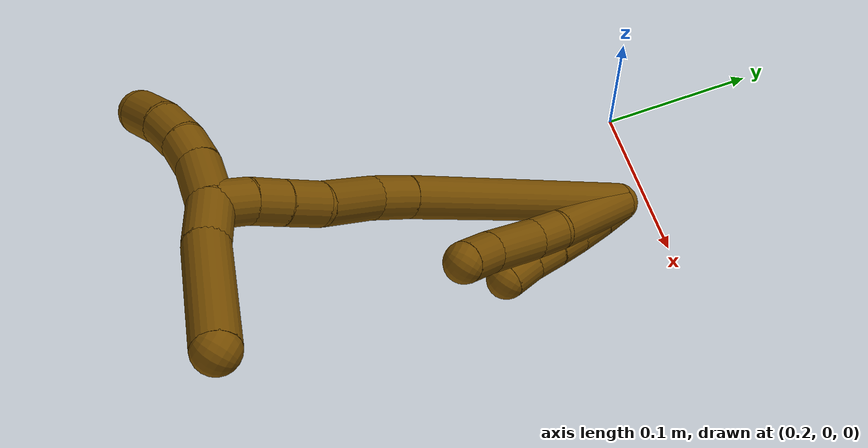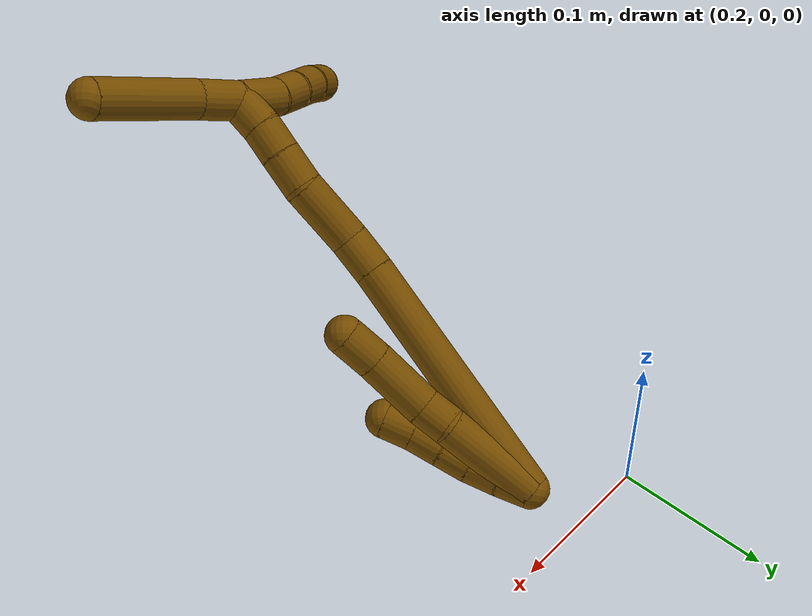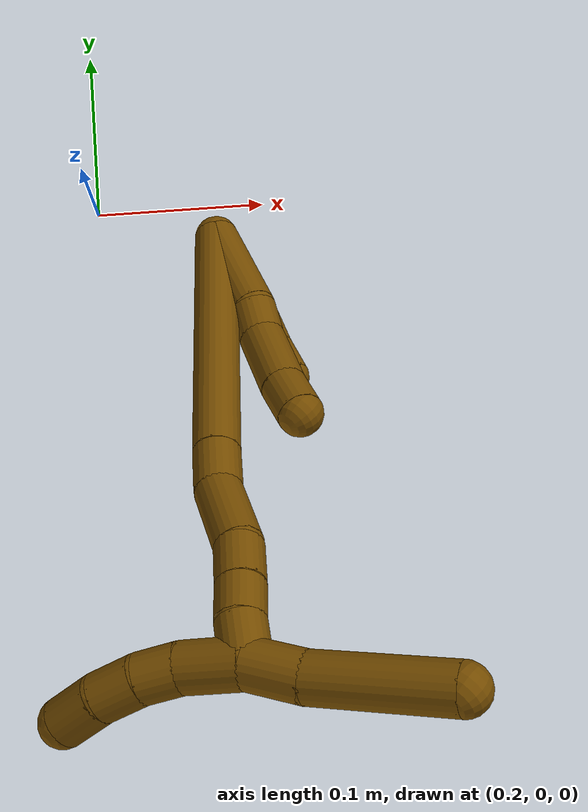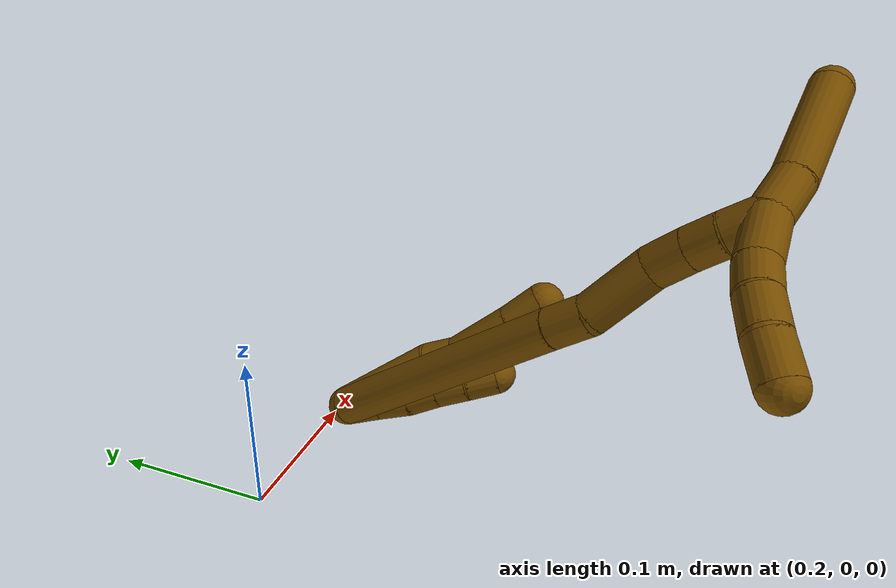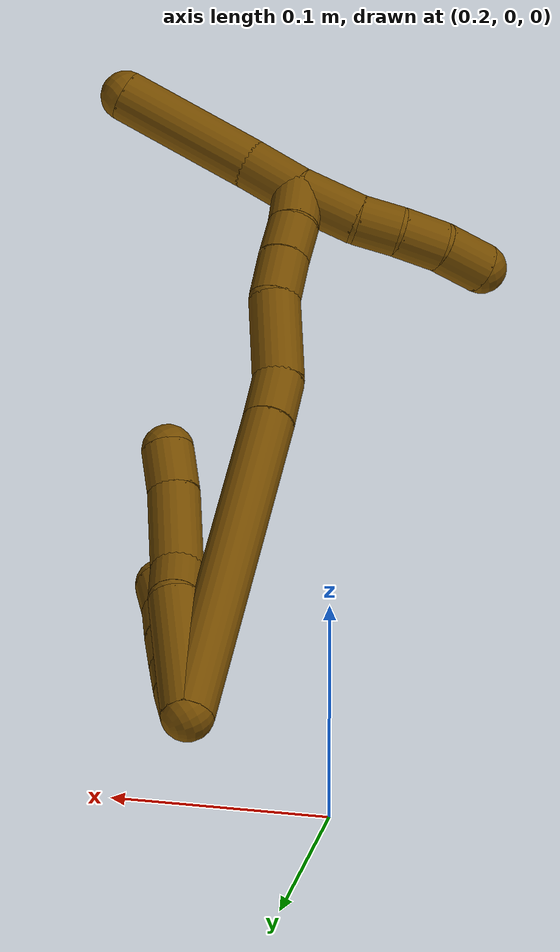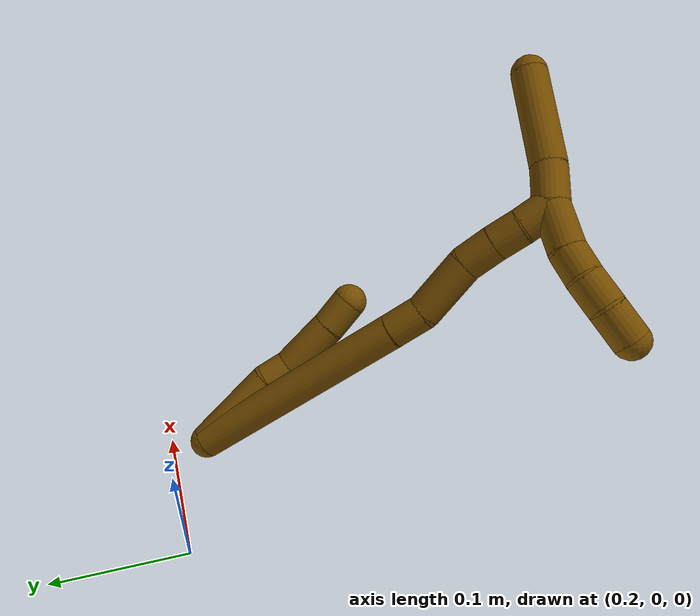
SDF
<sdf version="1.7">
 <world name="default">
  <model name="12">
   <static>0</static>
   <link name="12">
    <collision name="collision-cylinder-e_1_2_8">
     <pose>-0.0252 0.011881 0.015937 -0.64063 -0.902909 0.318956</pose>
     <geometry><cylinder><radius>0.0125</radius><length>0.064193</length></cylinder></geometry>
     <surface>
      <friction><ode><mu>1.16</mu><mu2>1.16</mu2><slip1>0</slip1><slip2>0</slip2></ode></friction>
      <contact><ode><kp>1e+06</kp><kd>1</kd><max_vel>0</max_vel><min_depth>0.001</min_depth></ode></contact>
     </surface>
    </collision>
    <visual name="visual-cylinder-e_1_2_8">
     <pose>-0.0252 0.011881 0.015937 -0.64063 -0.902909 0.318956</pose>
     <geometry><cylinder><radius>0.0125</radius><length>0.064193</length></cylinder></geometry>
     <material><ambient>0.466667 0.301961 0 1</ambient></material>
    </visual>
    <collision name="collision-cylinder-e_2_8_9">
     <pose>-0.056569 0.029074 0.037834 -0.727898 -0.657835 0.258576</pose>
     <geometry><cylinder><radius>0.0125</radius><length>0.02018</length></cylinder></geometry>
     <surface>
      <friction><ode><mu>1.16</mu><mu2>1.16</mu2><slip1>0</slip1><slip2>0</slip2></ode></friction>
      <contact><ode><kp>1e+06</kp><kd>1</kd><max_vel>0</max_vel><min_depth>0.001</min_depth></ode></contact>
     </surface>
    </collision>
    <visual name="visual-cylinder-e_2_8_9">
     <pose>-0.056569 0.029074 0.037834 -0.727898 -0.657835 0.258576</pose>
     <geometry><cylinder><radius>0.0125</radius><length>0.02018</length></cylinder></geometry>
     <material><ambient>0.466667 0.301961 0 1</ambient></material>
    </visual>
    <collision name="collision-cylinder-e_3_9_10">
     <pose>-0.079173 0.040359 0.055163 -0.483729 -0.907538 0.23948</pose>
     <geometry><cylinder><radius>0.0125</radius><length>0.041715</length></cylinder></geometry>
     <surface>
      <friction><ode><mu>1.16</mu><mu2>1.16</mu2><slip1>0</slip1><slip2>0</slip2></ode></friction>
      <contact><ode><kp>1e+06</kp><kd>1</kd><max_vel>0</max_vel><min_depth>0.001</min_depth></ode></contact>
     </surface>
    </collision>
    <visual name="visual-cylinder-e_3_9_10">
     <pose>-0.079173 0.040359 0.055163 -0.483729 -0.907538 0.23948</pose>
     <geometry><cylinder><radius>0.0125</radius><length>0.041715</length></cylinder></geometry>
     <material><ambient>0.466667 0.301961 0 1</ambient></material>
    </visual>
    <collision name="collision-cylinder-e_4_10_6">
     <pose>-0.105649 0.049569 0.072159 -0.522052 -0.996792 0.288723</pose>
     <geometry><cylinder><radius>0.0125</radius><length>0.023913</length></cylinder></geometry>
     <surface>
      <friction><ode><mu>1.16</mu><mu2>1.16</mu2><slip1>0</slip1><slip2>0</slip2></ode></friction>
      <contact><ode><kp>1e+06</kp><kd>1</kd><max_vel>0</max_vel><min_depth>0.001</min_depth></ode></contact>
     </surface>
    </collision>
    <visual name="visual-cylinder-e_4_10_6">
     <pose>-0.105649 0.049569 0.072159 -0.522052 -0.996792 0.288723</pose>
     <geometry><cylinder><radius>0.0125</radius><length>0.023913</length></cylinder></geometry>
     <material><ambient>0.466667 0.301961 0 1</ambient></material>
    </visual>
    <collision name="collision-cylinder-e_1_2_11">
     <pose>-0.006079 0.006977 0.003791 -1.07301 -0.653399 0.397684</pose>
     <geometry><cylinder><radius>0.0125</radius><length>0.02</length></cylinder></geometry>
     <surface>
      <friction><ode><mu>1.16</mu><mu2>1.16</mu2><slip1>0</slip1><slip2>0</slip2></ode></friction>
      <contact><ode><kp>1e+06</kp><kd>1</kd><max_vel>0</max_vel><min_depth>0.001</min_depth></ode></contact>
     </surface>
    </collision>
    <visual name="visual-cylinder-e_1_2_11">
     <pose>-0.006079 0.006977 0.003791 -1.07301 -0.653399 0.397684</pose>
     <geometry><cylinder><radius>0.0125</radius><length>0.02</length></cylinder></geometry>
     <material><ambient>0.466667 0.301961 0 1</ambient></material>
    </visual>
    <collision name="collision-cylinder-e_2_11_12">
     <pose>-0.017991 0.020872 0.011838 -1.01939 -0.622788 0.356012</pose>
     <geometry><cylinder><radius>0.0125</radius><length>0.02</length></cylinder></geometry>
     <surface>
      <friction><ode><mu>1.16</mu><mu2>1.16</mu2><slip1>0</slip1><slip2>0</slip2></ode></friction>
      <contact><ode><kp>1e+06</kp><kd>1</kd><max_vel>0</max_vel><min_depth>0.001</min_depth></ode></contact>
     </surface>
    </collision>
    <visual name="visual-cylinder-e_2_11_12">
     <pose>-0.017991 0.020872 0.011838 -1.01939 -0.622788 0.356012</pose>
     <geometry><cylinder><radius>0.0125</radius><length>0.02</length></cylinder></geometry>
     <material><ambient>0.466667 0.301961 0 1</ambient></material>
    </visual>
    <collision name="collision-cylinder-e_3_12_13">
     <pose>-0.03077 0.033358 0.020649 -0.884987 -0.767868 0.378262</pose>
     <geometry><cylinder><radius>0.0125</radius><length>0.02</length></cylinder></geometry>
     <surface>
      <friction><ode><mu>1.16</mu><mu2>1.16</mu2><slip1>0</slip1><slip2>0</slip2></ode></friction>
      <contact><ode><kp>1e+06</kp><kd>1</kd><max_vel>0</max_vel><min_depth>0.001</min_depth></ode></contact>
     </surface>
    </collision>
    <visual name="visual-cylinder-e_3_12_13">
     <pose>-0.03077 0.033358 0.020649 -0.884987 -0.767868 0.378262</pose>
     <geometry><cylinder><radius>0.0125</radius><length>0.02</length></cylinder></geometry>
     <material><ambient>0.466667 0.301961 0 1</ambient></material>
    </visual>
    <collision name="collision-cylinder-e_4_13_14">
     <pose>-0.044141 0.044892 0.030013 -0.89257 -0.697814 0.34468</pose>
     <geometry><cylinder><radius>0.0125</radius><length>0.02</length></cylinder></geometry>
     <surface>
      <friction><ode><mu>1.16</mu><mu2>1.16</mu2><slip1>0</slip1><slip2>0</slip2></ode></friction>
      <contact><ode><kp>1e+06</kp><kd>1</kd><max_vel>0</max_vel><min_depth>0.001</min_depth></ode></contact>
     </surface>
    </collision>
    <visual name="visual-cylinder-e_4_13_14">
     <pose>-0.044141 0.044892 0.030013 -0.89257 -0.697814 0.34468</pose>
     <geometry><cylinder><radius>0.0125</radius><length>0.02</length></cylinder></geometry>
     <material><ambient>0.466667 0.301961 0 1</ambient></material>
    </visual>
    <collision name="collision-cylinder-e_5_14_5">
     <pose>-0.057183 0.057284 0.038685 -1.02917 -0.723043 0.421256</pose>
     <geometry><cylinder><radius>0.0125</radius><length>0.02</length></cylinder></geometry>
     <surface>
      <friction><ode><mu>1.16</mu><mu2>1.16</mu2><slip1>0</slip1><slip2>0</slip2></ode></friction>
      <contact><ode><kp>1e+06</kp><kd>1</kd><max_vel>0</max_vel><min_depth>0.001</min_depth></ode></contact>
     </surface>
    </collision>
    <visual name="visual-cylinder-e_5_14_5">
     <pose>-0.057183 0.057284 0.038685 -1.02917 -0.723043 0.421256</pose>
     <geometry><cylinder><radius>0.0125</radius><length>0.02</length></cylinder></geometry>
     <material><ambient>0.466667 0.301961 0 1</ambient></material>
    </visual>
    <collision name="collision-cylinder-e_1_2_15">
     <pose>-0.050721 0.021179 0.061892 -0.329706 -0.659541 0.113759</pose>
     <geometry><cylinder><radius>0.0125</radius><length>0.165551</length></cylinder></geometry>
     <surface>
      <friction><ode><mu>1.16</mu><mu2>1.16</mu2><slip1>0</slip1><slip2>0</slip2></ode></friction>
      <contact><ode><kp>1e+06</kp><kd>1</kd><max_vel>0</max_vel><min_depth>0.001</min_depth></ode></contact>
     </surface>
    </collision>
    <visual name="visual-cylinder-e_1_2_15">
     <pose>-0.050721 0.021179 0.061892 -0.329706 -0.659541 0.113759</pose>
     <geometry><cylinder><radius>0.0125</radius><length>0.165551</length></cylinder></geometry>
     <material><ambient>0.466667 0.301961 0 1</ambient></material>
    </visual>
    <collision name="collision-cylinder-e_2_15_16">
     <pose>-0.109301 0.046074 0.132967 -0.384445 -0.670703 0.135453</pose>
     <geometry><cylinder><radius>0.0125</radius><length>0.02529</length></cylinder></geometry>
     <surface>
      <friction><ode><mu>1.16</mu><mu2>1.16</mu2><slip1>0</slip1><slip2>0</slip2></ode></friction>
      <contact><ode><kp>1e+06</kp><kd>1</kd><max_vel>0</max_vel><min_depth>0.001</min_depth></ode></contact>
     </surface>
    </collision>
    <visual name="visual-cylinder-e_2_15_16">
     <pose>-0.109301 0.046074 0.132967 -0.384445 -0.670703 0.135453</pose>
     <geometry><cylinder><radius>0.0125</radius><length>0.02529</length></cylinder></geometry>
     <material><ambient>0.466667 0.301961 0 1</ambient></material>
    </visual>
    <collision name="collision-cylinder-e_3_16_17">
     <pose>-0.134948 0.053346 0.153859 -0.294941 -0.968164 0.1559</pose>
     <geometry><cylinder><radius>0.0125</radius><length>0.043181</length></cylinder></geometry>
     <surface>
      <friction><ode><mu>1.16</mu><mu2>1.16</mu2><slip1>0</slip1><slip2>0</slip2></ode></friction>
      <contact><ode><kp>1e+06</kp><kd>1</kd><max_vel>0</max_vel><min_depth>0.001</min_depth></ode></contact>
     </surface>
    </collision>
    <visual name="visual-cylinder-e_3_16_17">
     <pose>-0.134948 0.053346 0.153859 -0.294941 -0.968164 0.1559</pose>
     <geometry><cylinder><radius>0.0125</radius><length>0.043181</length></cylinder></geometry>
     <material><ambient>0.466667 0.301961 0 1</ambient></material>
    </visual>
    <collision name="collision-cylinder-e_4_17_18">
     <pose>-0.160546 0.05934 0.174157 -0.276457 -0.718737 0.104431</pose>
     <geometry><cylinder><radius>0.0125</radius><length>0.023724</length></cylinder></geometry>
     <surface>
      <friction><ode><mu>1.16</mu><mu2>1.16</mu2><slip1>0</slip1><slip2>0</slip2></ode></friction>
      <contact><ode><kp>1e+06</kp><kd>1</kd><max_vel>0</max_vel><min_depth>0.001</min_depth></ode></contact>
     </surface>
    </collision>
    <visual name="visual-cylinder-e_4_17_18">
     <pose>-0.160546 0.05934 0.174157 -0.276457 -0.718737 0.104431</pose>
     <geometry><cylinder><radius>0.0125</radius><length>0.023724</length></cylinder></geometry>
     <material><ambient>0.466667 0.301961 0 1</ambient></material>
    </visual>
    <collision name="collision-cylinder-e_5_18_19">
     <pose>-0.174656 0.064094 0.190441 -0.292464 -0.664814 0.101602</pose>
     <geometry><cylinder><radius>0.0125</radius><length>0.020422</length></cylinder></geometry>
     <surface>
      <friction><ode><mu>1.16</mu><mu2>1.16</mu2><slip1>0</slip1><slip2>0</slip2></ode></friction>
      <contact><ode><kp>1e+06</kp><kd>1</kd><max_vel>0</max_vel><min_depth>0.001</min_depth></ode></contact>
     </surface>
    </collision>
    <visual name="visual-cylinder-e_5_18_19">
     <pose>-0.174656 0.064094 0.190441 -0.292464 -0.664814 0.101602</pose>
     <geometry><cylinder><radius>0.0125</radius><length>0.020422</length></cylinder></geometry>
     <material><ambient>0.466667 0.301961 0 1</ambient></material>
    </visual>
    <collision name="collision-cylinder-e_6_19_1">
     <pose>-0.188159 0.069978 0.205521 -0.449999 -0.720723 0.172061</pose>
     <geometry><cylinder><radius>0.0125</radius><length>0.021831</length></cylinder></geometry>
     <surface>
      <friction><ode><mu>1.16</mu><mu2>1.16</mu2><slip1>0</slip1><slip2>0</slip2></ode></friction>
      <contact><ode><kp>1e+06</kp><kd>1</kd><max_vel>0</max_vel><min_depth>0.001</min_depth></ode></contact>
     </surface>
    </collision>
    <visual name="visual-cylinder-e_6_19_1">
     <pose>-0.188159 0.069978 0.205521 -0.449999 -0.720723 0.172061</pose>
     <geometry><cylinder><radius>0.0125</radius><length>0.021831</length></cylinder></geometry>
     <material><ambient>0.466667 0.301961 0 1</ambient></material>
    </visual>
    <collision name="collision-cylinder-e_1_1_20">
     <pose>-0.208171 0.078199 0.208266 -2.3548 -1.09677 1.94807</pose>
     <geometry><cylinder><radius>0.0125</radius><length>0.028793</length></cylinder></geometry>
     <surface>
      <friction><ode><mu>1.16</mu><mu2>1.16</mu2><slip1>0</slip1><slip2>0</slip2></ode></friction>
      <contact><ode><kp>1e+06</kp><kd>1</kd><max_vel>0</max_vel><min_depth>0.001</min_depth></ode></contact>
     </surface>
    </collision>
    <visual name="visual-cylinder-e_1_1_20">
     <pose>-0.208171 0.078199 0.208266 -2.3548 -1.09677 1.94807</pose>
     <geometry><cylinder><radius>0.0125</radius><length>0.028793</length></cylinder></geometry>
     <material><ambient>0.466667 0.301961 0 1</ambient></material>
    </visual>
    <collision name="collision-cylinder-e_2_20_4">
     <pose>-0.252661 0.089933 0.189002 -2.69067 -1.09692 2.42336</pose>
     <geometry><cylinder><radius>0.0125</radius><length>0.071207</length></cylinder></geometry>
     <surface>
      <friction><ode><mu>1.16</mu><mu2>1.16</mu2><slip1>0</slip1><slip2>0</slip2></ode></friction>
      <contact><ode><kp>1e+06</kp><kd>1</kd><max_vel>0</max_vel><min_depth>0.001</min_depth></ode></contact>
     </surface>
    </collision>
    <visual name="visual-cylinder-e_2_20_4">
     <pose>-0.252661 0.089933 0.189002 -2.69067 -1.09692 2.42336</pose>
     <geometry><cylinder><radius>0.0125</radius><length>0.071207</length></cylinder></geometry>
     <material><ambient>0.466667 0.301961 0 1</ambient></material>
    </visual>
    <collision name="collision-cylinder-e_1_1_21">
     <pose>-0.181882 0.071498 0.221026 0.246997 1.01489 0.137817</pose>
     <geometry><cylinder><radius>0.0125</radius><length>0.031739</length></cylinder></geometry>
     <surface>
      <friction><ode><mu>1.16</mu><mu2>1.16</mu2><slip1>0</slip1><slip2>0</slip2></ode></friction>
      <contact><ode><kp>1e+06</kp><kd>1</kd><max_vel>0</max_vel><min_depth>0.001</min_depth></ode></contact>
     </surface>
    </collision>
    <visual name="visual-cylinder-e_1_1_21">
     <pose>-0.181882 0.071498 0.221026 0.246997 1.01489 0.137817</pose>
     <geometry><cylinder><radius>0.0125</radius><length>0.031739</length></cylinder></geometry>
     <material><ambient>0.466667 0.301961 0 1</ambient></material>
    </visual>
    <collision name="collision-cylinder-e_2_21_22">
     <pose>-0.160739 0.068812 0.235999 0.092868 0.839009 0.041441</pose>
     <geometry><cylinder><radius>0.0125</radius><length>0.020599</length></cylinder></geometry>
     <surface>
      <friction><ode><mu>1.16</mu><mu2>1.16</mu2><slip1>0</slip1><slip2>0</slip2></ode></friction>
      <contact><ode><kp>1e+06</kp><kd>1</kd><max_vel>0</max_vel><min_depth>0.001</min_depth></ode></contact>
     </surface>
    </collision>
    <visual name="visual-cylinder-e_2_21_22">
     <pose>-0.160739 0.068812 0.235999 0.092868 0.839009 0.041441</pose>
     <geometry><cylinder><radius>0.0125</radius><length>0.020599</length></cylinder></geometry>
     <material><ambient>0.466667 0.301961 0 1</ambient></material>
    </visual>
    <collision name="collision-cylinder-e_3_22_23">
     <pose>-0.144801 0.069567 0.250529 -0.179458 0.814827 -0.077616</pose>
     <geometry><cylinder><radius>0.0125</radius><length>0.022747</length></cylinder></geometry>
     <surface>
      <friction><ode><mu>1.16</mu><mu2>1.16</mu2><slip1>0</slip1><slip2>0</slip2></ode></friction>
      <contact><ode><kp>1e+06</kp><kd>1</kd><max_vel>0</max_vel><min_depth>0.001</min_depth></ode></contact>
     </surface>
    </collision>
    <visual name="visual-cylinder-e_3_22_23">
     <pose>-0.144801 0.069567 0.250529 -0.179458 0.814827 -0.077616</pose>
     <geometry><cylinder><radius>0.0125</radius><length>0.022747</length></cylinder></geometry>
     <material><ambient>0.466667 0.301961 0 1</ambient></material>
    </visual>
    <collision name="collision-cylinder-e_4_23_3">
     <pose>-0.127409 0.07487 0.265741 -0.478701 0.821003 -0.211623</pose>
     <geometry><cylinder><radius>0.0125</radius><length>0.024914</length></cylinder></geometry>
     <surface>
      <friction><ode><mu>1.16</mu><mu2>1.16</mu2><slip1>0</slip1><slip2>0</slip2></ode></friction>
      <contact><ode><kp>1e+06</kp><kd>1</kd><max_vel>0</max_vel><min_depth>0.001</min_depth></ode></contact>
     </surface>
    </collision>
    <visual name="visual-cylinder-e_4_23_3">
     <pose>-0.127409 0.07487 0.265741 -0.478701 0.821003 -0.211623</pose>
     <geometry><cylinder><radius>0.0125</radius><length>0.024914</length></cylinder></geometry>
     <material><ambient>0.466667 0.301961 0 1</ambient></material>
    </visual>
    <collision name="collision-sphere-3">
     <pose>-0.118292 0.07878 0.273276 0 -0 0</pose>
     <geometry><sphere><radius>0.0125</radius></sphere></geometry>
     <surface>
      <friction><ode><mu>1.16</mu><mu2>1.16</mu2><slip1>0</slip1><slip2>0</slip2></ode></friction>
      <contact><ode><kp>1e+06</kp><kd>1</kd><max_vel>0</max_vel><min_depth>0.001</min_depth></ode></contact>
     </surface>
    </collision>
    <visual name="visual-sphere-3">
     <pose>-0.118292 0.07878 0.273276 0 -0 0</pose>
     <geometry><sphere><radius>0.0125</radius></sphere></geometry>
     <material><ambient>0.466667 0.301961 0 1</ambient></material>
    </visual>
    <collision name="collision-sphere-23">
     <pose>-0.136526 0.070959 0.258206 0 -0 0</pose>
     <geometry><sphere><radius>0.0125</radius></sphere></geometry>
     <surface>
      <friction><ode><mu>1.16</mu><mu2>1.16</mu2><slip1>0</slip1><slip2>0</slip2></ode></friction>
      <contact><ode><kp>1e+06</kp><kd>1</kd><max_vel>0</max_vel><min_depth>0.001</min_depth></ode></contact>
     </surface>
    </collision>
    <visual name="visual-sphere-23">
     <pose>-0.136526 0.070959 0.258206 0 -0 0</pose>
     <geometry><sphere><radius>0.0125</radius></sphere></geometry>
     <material><ambient>0.466667 0.301961 0 1</ambient></material>
    </visual>
    <collision name="collision-sphere-22">
     <pose>-0.153077 0.068174 0.242852 0 -0 0</pose>
     <geometry><sphere><radius>0.0125</radius></sphere></geometry>
     <surface>
      <friction><ode><mu>1.16</mu><mu2>1.16</mu2><slip1>0</slip1><slip2>0</slip2></ode></friction>
      <contact><ode><kp>1e+06</kp><kd>1</kd><max_vel>0</max_vel><min_depth>0.001</min_depth></ode></contact>
     </surface>
    </collision>
    <visual name="visual-sphere-22">
     <pose>-0.153077 0.068174 0.242852 0 -0 0</pose>
     <geometry><sphere><radius>0.0125</radius></sphere></geometry>
     <material><ambient>0.466667 0.301961 0 1</ambient></material>
    </visual>
    <collision name="collision-sphere-21">
     <pose>-0.168402 0.069451 0.229147 0 -0 0</pose>
     <geometry><sphere><radius>0.0125</radius></sphere></geometry>
     <surface>
      <friction><ode><mu>1.16</mu><mu2>1.16</mu2><slip1>0</slip1><slip2>0</slip2></ode></friction>
      <contact><ode><kp>1e+06</kp><kd>1</kd><max_vel>0</max_vel><min_depth>0.001</min_depth></ode></contact>
     </surface>
    </collision>
    <visual name="visual-sphere-21">
     <pose>-0.168402 0.069451 0.229147 0 -0 0</pose>
     <geometry><sphere><radius>0.0125</radius></sphere></geometry>
     <material><ambient>0.466667 0.301961 0 1</ambient></material>
    </visual>
    <collision name="collision-sphere-4">
     <pose>-0.284341 0.097013 0.174379 0 -0 0</pose>
     <geometry><sphere><radius>0.0125</radius></sphere></geometry>
     <surface>
      <friction><ode><mu>1.16</mu><mu2>1.16</mu2><slip1>0</slip1><slip2>0</slip2></ode></friction>
      <contact><ode><kp>1e+06</kp><kd>1</kd><max_vel>0</max_vel><min_depth>0.001</min_depth></ode></contact>
     </surface>
    </collision>
    <visual name="visual-sphere-4">
     <pose>-0.284341 0.097013 0.174379 0 -0 0</pose>
     <geometry><sphere><radius>0.0125</radius></sphere></geometry>
     <material><ambient>0.466667 0.301961 0 1</ambient></material>
    </visual>
    <collision name="collision-sphere-20">
     <pose>-0.220981 0.082852 0.203625 0 -0 0</pose>
     <geometry><sphere><radius>0.0125</radius></sphere></geometry>
     <surface>
      <friction><ode><mu>1.16</mu><mu2>1.16</mu2><slip1>0</slip1><slip2>0</slip2></ode></friction>
      <contact><ode><kp>1e+06</kp><kd>1</kd><max_vel>0</max_vel><min_depth>0.001</min_depth></ode></contact>
     </surface>
    </collision>
    <visual name="visual-sphere-20">
     <pose>-0.220981 0.082852 0.203625 0 -0 0</pose>
     <geometry><sphere><radius>0.0125</radius></sphere></geometry>
     <material><ambient>0.466667 0.301961 0 1</ambient></material>
    </visual>
    <collision name="collision-sphere-11">
     <pose>-0.012158 0.013953 0.007583 0 -0 0</pose>
     <geometry><sphere><radius>0.0125</radius></sphere></geometry>
     <surface>
      <friction><ode><mu>1.16</mu><mu2>1.16</mu2><slip1>0</slip1><slip2>0</slip2></ode></friction>
      <contact><ode><kp>1e+06</kp><kd>1</kd><max_vel>0</max_vel><min_depth>0.001</min_depth></ode></contact>
     </surface>
    </collision>
    <visual name="visual-sphere-11">
     <pose>-0.012158 0.013953 0.007583 0 -0 0</pose>
     <geometry><sphere><radius>0.0125</radius></sphere></geometry>
     <material><ambient>0.466667 0.301961 0 1</ambient></material>
    </visual>
    <collision name="collision-sphere-6">
     <pose>-0.115689 0.052806 0.077787 0 -0 0</pose>
     <geometry><sphere><radius>0.0125</radius></sphere></geometry>
     <surface>
      <friction><ode><mu>1.16</mu><mu2>1.16</mu2><slip1>0</slip1><slip2>0</slip2></ode></friction>
      <contact><ode><kp>1e+06</kp><kd>1</kd><max_vel>0</max_vel><min_depth>0.001</min_depth></ode></contact>
     </surface>
    </collision>
    <visual name="visual-sphere-6">
     <pose>-0.115689 0.052806 0.077787 0 -0 0</pose>
     <geometry><sphere><radius>0.0125</radius></sphere></geometry>
     <material><ambient>0.466667 0.301961 0 1</ambient></material>
    </visual>
    <collision name="collision-sphere-10">
     <pose>-0.095608 0.046331 0.066532 0 -0 0</pose>
     <geometry><sphere><radius>0.0125</radius></sphere></geometry>
     <surface>
      <friction><ode><mu>1.16</mu><mu2>1.16</mu2><slip1>0</slip1><slip2>0</slip2></ode></friction>
      <contact><ode><kp>1e+06</kp><kd>1</kd><max_vel>0</max_vel><min_depth>0.001</min_depth></ode></contact>
     </surface>
    </collision>
    <visual name="visual-sphere-10">
     <pose>-0.095608 0.046331 0.066532 0 -0 0</pose>
     <geometry><sphere><radius>0.0125</radius></sphere></geometry>
     <material><ambient>0.466667 0.301961 0 1</ambient></material>
    </visual>
    <collision name="collision-sphere-9">
     <pose>-0.062738 0.034386 0.043795 0 -0 0</pose>
     <geometry><sphere><radius>0.0125</radius></sphere></geometry>
     <surface>
      <friction><ode><mu>1.16</mu><mu2>1.16</mu2><slip1>0</slip1><slip2>0</slip2></ode></friction>
      <contact><ode><kp>1e+06</kp><kd>1</kd><max_vel>0</max_vel><min_depth>0.001</min_depth></ode></contact>
     </surface>
    </collision>
    <visual name="visual-sphere-9">
     <pose>-0.062738 0.034386 0.043795 0 -0 0</pose>
     <geometry><sphere><radius>0.0125</radius></sphere></geometry>
     <material><ambient>0.466667 0.301961 0 1</ambient></material>
    </visual>
    <collision name="collision-sphere-2">
     <geometry><sphere><radius>0.0125</radius></sphere></geometry>
     <surface>
      <friction><ode><mu>1.16</mu><mu2>1.16</mu2><slip1>0</slip1><slip2>0</slip2></ode></friction>
      <contact><ode><kp>1e+06</kp><kd>1</kd><max_vel>0</max_vel><min_depth>0.001</min_depth></ode></contact>
     </surface>
    </collision>
    <visual name="visual-sphere-2">
     <geometry><sphere><radius>0.0125</radius></sphere></geometry>
     <material><ambient>0.466667 0.301961 0 1</ambient></material>
    </visual>
    <collision name="collision-sphere-19">
     <pose>-0.180955 0.066411 0.198136 0 -0 0</pose>
     <geometry><sphere><radius>0.0125</radius></sphere></geometry>
     <surface>
      <friction><ode><mu>1.16</mu><mu2>1.16</mu2><slip1>0</slip1><slip2>0</slip2></ode></friction>
      <contact><ode><kp>1e+06</kp><kd>1</kd><max_vel>0</max_vel><min_depth>0.001</min_depth></ode></contact>
     </surface>
    </collision>
    <visual name="visual-sphere-19">
     <pose>-0.180955 0.066411 0.198136 0 -0 0</pose>
     <geometry><sphere><radius>0.0125</radius></sphere></geometry>
     <material><ambient>0.466667 0.301961 0 1</ambient></material>
    </visual>
    <collision name="collision-sphere-8">
     <pose>-0.0504 0.023762 0.031873 0 -0 0</pose>
     <geometry><sphere><radius>0.0125</radius></sphere></geometry>
     <surface>
      <friction><ode><mu>1.16</mu><mu2>1.16</mu2><slip1>0</slip1><slip2>0</slip2></ode></friction>
      <contact><ode><kp>1e+06</kp><kd>1</kd><max_vel>0</max_vel><min_depth>0.001</min_depth></ode></contact>
     </surface>
    </collision>
    <visual name="visual-sphere-8">
     <pose>-0.0504 0.023762 0.031873 0 -0 0</pose>
     <geometry><sphere><radius>0.0125</radius></sphere></geometry>
     <material><ambient>0.466667 0.301961 0 1</ambient></material>
    </visual>
    <collision name="collision-sphere-12">
     <pose>-0.023824 0.027791 0.016093 0 -0 0</pose>
     <geometry><sphere><radius>0.0125</radius></sphere></geometry>
     <surface>
      <friction><ode><mu>1.16</mu><mu2>1.16</mu2><slip1>0</slip1><slip2>0</slip2></ode></friction>
      <contact><ode><kp>1e+06</kp><kd>1</kd><max_vel>0</max_vel><min_depth>0.001</min_depth></ode></contact>
     </surface>
    </collision>
    <visual name="visual-sphere-12">
     <pose>-0.023824 0.027791 0.016093 0 -0 0</pose>
     <geometry><sphere><radius>0.0125</radius></sphere></geometry>
     <material><ambient>0.466667 0.301961 0 1</ambient></material>
    </visual>
    <collision name="collision-sphere-13">
     <pose>-0.037716 0.038926 0.025205 0 -0 0</pose>
     <geometry><sphere><radius>0.0125</radius></sphere></geometry>
     <surface>
      <friction><ode><mu>1.16</mu><mu2>1.16</mu2><slip1>0</slip1><slip2>0</slip2></ode></friction>
      <contact><ode><kp>1e+06</kp><kd>1</kd><max_vel>0</max_vel><min_depth>0.001</min_depth></ode></contact>
     </surface>
    </collision>
    <visual name="visual-sphere-13">
     <pose>-0.037716 0.038926 0.025205 0 -0 0</pose>
     <geometry><sphere><radius>0.0125</radius></sphere></geometry>
     <material><ambient>0.466667 0.301961 0 1</ambient></material>
    </visual>
    <collision name="collision-sphere-14">
     <pose>-0.050567 0.050859 0.03482 0 -0 0</pose>
     <geometry><sphere><radius>0.0125</radius></sphere></geometry>
     <surface>
      <friction><ode><mu>1.16</mu><mu2>1.16</mu2><slip1>0</slip1><slip2>0</slip2></ode></friction>
      <contact><ode><kp>1e+06</kp><kd>1</kd><max_vel>0</max_vel><min_depth>0.001</min_depth></ode></contact>
     </surface>
    </collision>
    <visual name="visual-sphere-14">
     <pose>-0.050567 0.050859 0.03482 0 -0 0</pose>
     <geometry><sphere><radius>0.0125</radius></sphere></geometry>
     <material><ambient>0.466667 0.301961 0 1</ambient></material>
    </visual>
    <collision name="collision-sphere-5">
     <pose>-0.0638 0.063708 0.042551 0 -0 0</pose>
     <geometry><sphere><radius>0.0125</radius></sphere></geometry>
     <surface>
      <friction><ode><mu>1.16</mu><mu2>1.16</mu2><slip1>0</slip1><slip2>0</slip2></ode></friction>
      <contact><ode><kp>1e+06</kp><kd>1</kd><max_vel>0</max_vel><min_depth>0.001</min_depth></ode></contact>
     </surface>
    </collision>
    <visual name="visual-sphere-5">
     <pose>-0.0638 0.063708 0.042551 0 -0 0</pose>
     <geometry><sphere><radius>0.0125</radius></sphere></geometry>
     <material><ambient>0.466667 0.301961 0 1</ambient></material>
    </visual>
    <collision name="collision-sphere-15">
     <pose>-0.101442 0.042358 0.123784 0 -0 0</pose>
     <geometry><sphere><radius>0.0125</radius></sphere></geometry>
     <surface>
      <friction><ode><mu>1.16</mu><mu2>1.16</mu2><slip1>0</slip1><slip2>0</slip2></ode></friction>
      <contact><ode><kp>1e+06</kp><kd>1</kd><max_vel>0</max_vel><min_depth>0.001</min_depth></ode></contact>
     </surface>
    </collision>
    <visual name="visual-sphere-15">
     <pose>-0.101442 0.042358 0.123784 0 -0 0</pose>
     <geometry><sphere><radius>0.0125</radius></sphere></geometry>
     <material><ambient>0.466667 0.301961 0 1</ambient></material>
    </visual>
    <collision name="collision-sphere-16">
     <pose>-0.117161 0.049789 0.142149 0 -0 0</pose>
     <geometry><sphere><radius>0.0125</radius></sphere></geometry>
     <surface>
      <friction><ode><mu>1.16</mu><mu2>1.16</mu2><slip1>0</slip1><slip2>0</slip2></ode></friction>
      <contact><ode><kp>1e+06</kp><kd>1</kd><max_vel>0</max_vel><min_depth>0.001</min_depth></ode></contact>
     </surface>
    </collision>
    <visual name="visual-sphere-16">
     <pose>-0.117161 0.049789 0.142149 0 -0 0</pose>
     <geometry><sphere><radius>0.0125</radius></sphere></geometry>
     <material><ambient>0.466667 0.301961 0 1</ambient></material>
    </visual>
    <collision name="collision-sphere-17">
     <pose>-0.152735 0.056903 0.165568 0 -0 0</pose>
     <geometry><sphere><radius>0.0125</radius></sphere></geometry>
     <surface>
      <friction><ode><mu>1.16</mu><mu2>1.16</mu2><slip1>0</slip1><slip2>0</slip2></ode></friction>
      <contact><ode><kp>1e+06</kp><kd>1</kd><max_vel>0</max_vel><min_depth>0.001</min_depth></ode></contact>
     </surface>
    </collision>
    <visual name="visual-sphere-17">
     <pose>-0.152735 0.056903 0.165568 0 -0 0</pose>
     <geometry><sphere><radius>0.0125</radius></sphere></geometry>
     <material><ambient>0.466667 0.301961 0 1</ambient></material>
    </visual>
    <collision name="collision-sphere-18">
     <pose>-0.168356 0.061777 0.182746 0 -0 0</pose>
     <geometry><sphere><radius>0.0125</radius></sphere></geometry>
     <surface>
      <friction><ode><mu>1.16</mu><mu2>1.16</mu2><slip1>0</slip1><slip2>0</slip2></ode></friction>
      <contact><ode><kp>1e+06</kp><kd>1</kd><max_vel>0</max_vel><min_depth>0.001</min_depth></ode></contact>
     </surface>
    </collision>
    <visual name="visual-sphere-18">
     <pose>-0.168356 0.061777 0.182746 0 -0 0</pose>
     <geometry><sphere><radius>0.0125</radius></sphere></geometry>
     <material><ambient>0.466667 0.301961 0 1</ambient></material>
    </visual>
    <collision name="collision-sphere-1">
     <pose>-0.195362 0.073546 0.212906 0 -0 0</pose>
     <geometry><sphere><radius>0.0125</radius></sphere></geometry>
     <surface>
      <friction><ode><mu>1.16</mu><mu2>1.16</mu2><slip1>0</slip1><slip2>0</slip2></ode></friction>
      <contact><ode><kp>1e+06</kp><kd>1</kd><max_vel>0</max_vel><min_depth>0.001</min_depth></ode></contact>
     </surface>
    </collision>
    <visual name="visual-sphere-1">
     <pose>-0.195362 0.073546 0.212906 0 -0 0</pose>
     <geometry><sphere><radius>0.0125</radius></sphere></geometry>
     <material><ambient>0.466667 0.301961 0 1</ambient></material>
    </visual>
    <inertial>
     <pose>-0.106294 0.045994 0.112432 0 -0 0</pose>
     <mass>0.75</mass>
     <inertia>
      <ixx>0.000358</ixx>
      <ixy>0</ixy>
      <ixz>0</ixz>
      <iyy>0.000539</iyy>
      <iyz>0</iyz>
      <izz>0.000205</izz>
     </inertia>
    </inertial>
   </link>
   <pose>0.270807 -0.026433 0.032207 -1.01967 0.84144 2.74446</pose>
  </model>
 </world>
</sdf>
